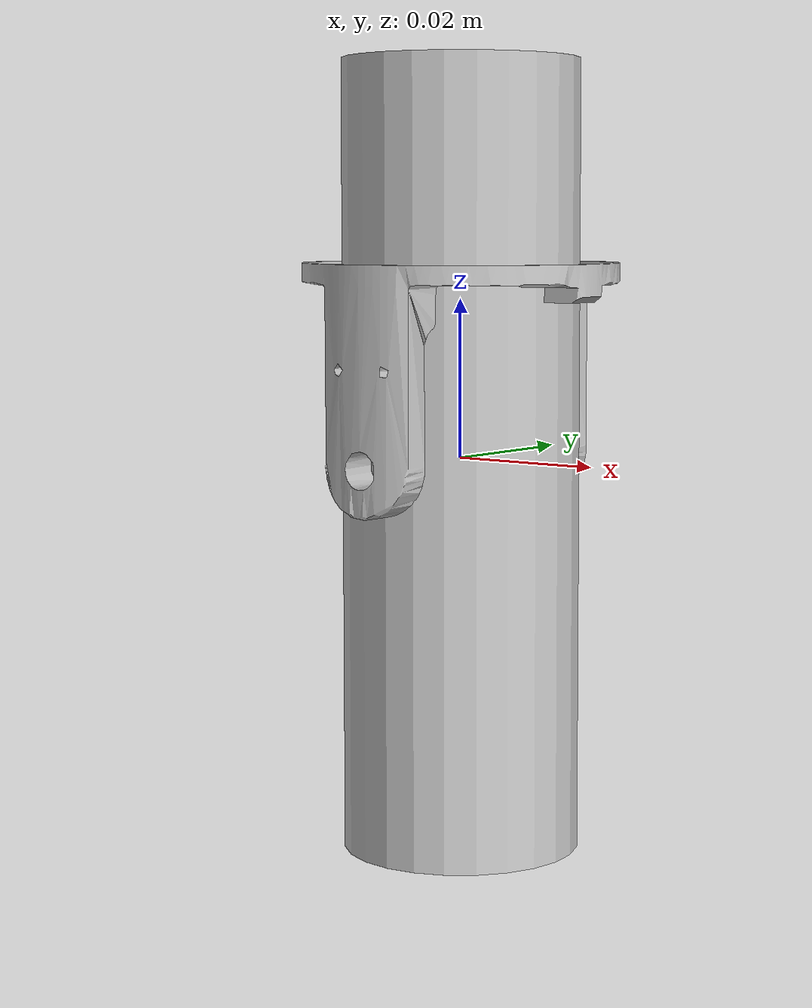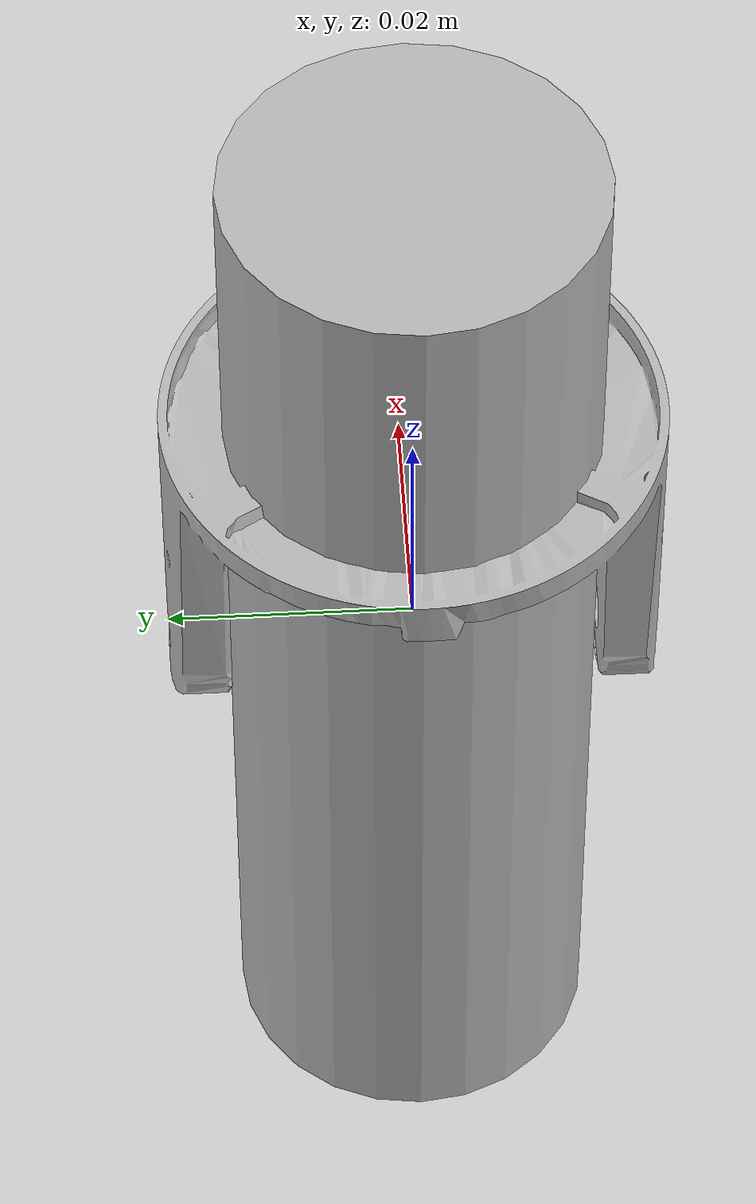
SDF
<?xml version='1.0'?>

<sdf version='1.5'>
    <model name='SoftFootThing'>

    <!-- WORLD -->
    <link name='world'>
    </link>

    <!-- LEG -->
    <joint name="world_to_leg" type="revolute">
        <parent>world</parent>
        <child>leg_link</child>
        <axis>
            <xyz>0 0 1</xyz>
            <limit>
                <upper>0</upper>
                <lower>0</lower>
            </limit>
        </axis>
    </joint>

    <link name='leg_link'>
        <pose>0 0 0 0 0 0</pose>
        <inertial>
            <pose>0 0 0 0 0 0</pose>
            <mass>0.001</mass>
            <inertia>
                <ixx>0.000001</ixx>
                <iyy>0.000001</iyy>
                <izz>0.000001</izz>
                <ixy>0</ixy>
                <ixz>0</ixz>
                <iyz>0</iyz>
            </inertia>
        </inertial>
        <collision name='leg_link_collision'>
            <pose>0 0 0 0 0 0</pose>
            <geometry>
                <cylinder>
                    <radius>0.015</radius>
                    <length>0.1</length>
                </cylinder>
            </geometry>
        </collision>
        <visual name='leg_link_visual'>
            <pose>0 0 0 0 0 0</pose>
            <geometry>
                <cylinder>
                    <radius>0.015</radius>
                    <length>0.1</length>
                </cylinder>
            </geometry>
        </visual>
    </link>

    <!-- FOOT -->

    <!-- ANKLE BASE -->
    <joint name="leg_link_softfoot_3_ankle_base_joint" type="revolute">
        <parent>leg_link</parent>
        <child>softfoot_3_ankle_base_link</child>
        <axis>
            <xyz>0 0 1</xyz>
            <limit>
                <upper>0</upper>
                <lower>0</lower>
            </limit>
        </axis>
    </joint>

    <link name='softfoot_3_ankle_base_link'>
        <pose>0 0 0 0 0 0</pose>
        <inertial>
            <pose>0 0 0 0 0 0</pose>
            <mass>0.001</mass>
            <inertia>
                <ixx>0.000001</ixx>
                <iyy>0.000001</iyy>
                <izz>0.000001</izz>
                <ixy>0</ixy>
                <ixz>0</ixz>
                <iyz>0</iyz>
            </inertia>
        </inertial>
    </link>

     <!-- ANKLE -->
    <joint name="softfoot_3_ankle_joint" type="revolute">
        <parent>softfoot_3_ankle_base_link</parent>
        <child>softfoot_3_ankle_link</child>
        <axis>
            <xyz>0 0 1</xyz>
            <limit>
                <upper>0</upper>
                <lower>0</lower>
            </limit>
        </axis>
    </joint>

    <link name='softfoot_3_ankle_link'>
        <pose>0 0 0 0 0 0</pose>
        <inertial>
            <pose>0 0 0 0 0 0</pose>
            <mass>0.001</mass>
            <inertia>
                <ixx>0.000001</ixx>
                <iyy>0.000001</iyy>
                <izz>0.000001</izz>
                <ixy>0</ixy>
                <ixz>0</ixz>
                <iyz>0</iyz>
            </inertia>
        </inertial>
        <collision name='leg_link_collision'>
            <pose>0 0 0 0 0 0</pose>
            <geometry>
                <mesh>
                    <scale>.001 .001 .001</scale>
                    <uri>model://meshes/visual/ankle.stl</uri>
                </mesh>
            </geometry>
        </collision>
        <visual name='leg_link_visual'>
            <pose>0 0 0 0 0 0</pose>
            <geometry>
                <mesh>
                    <scale>.001 .001 .001</scale>
                    <uri>model://meshes/visual/ankle.stl</uri>
                </mesh>
            </geometry>
        </visual>
    </link>

    </model>
</sdf>
